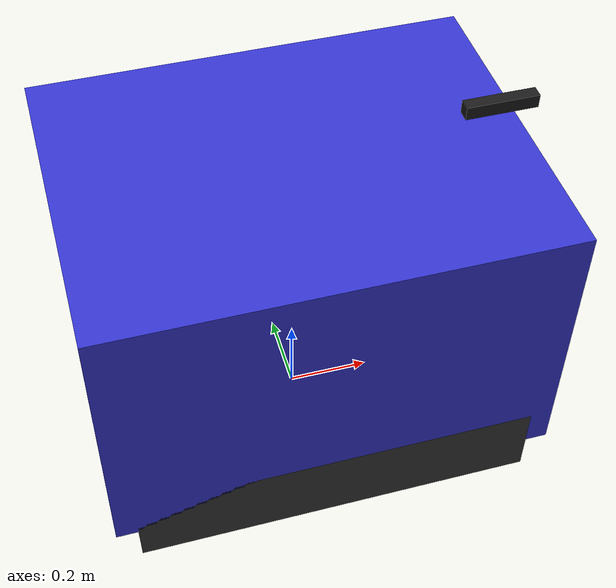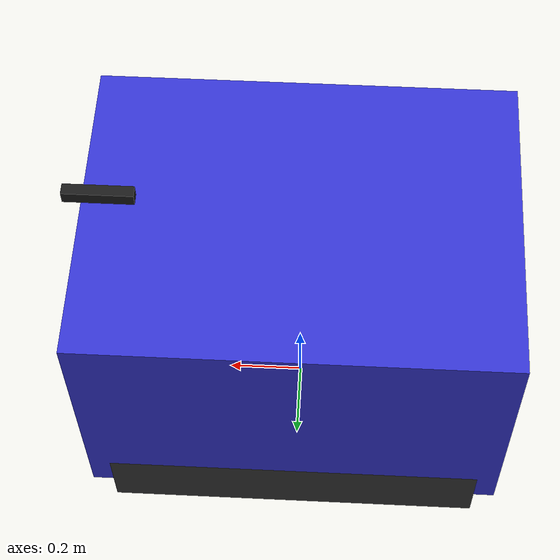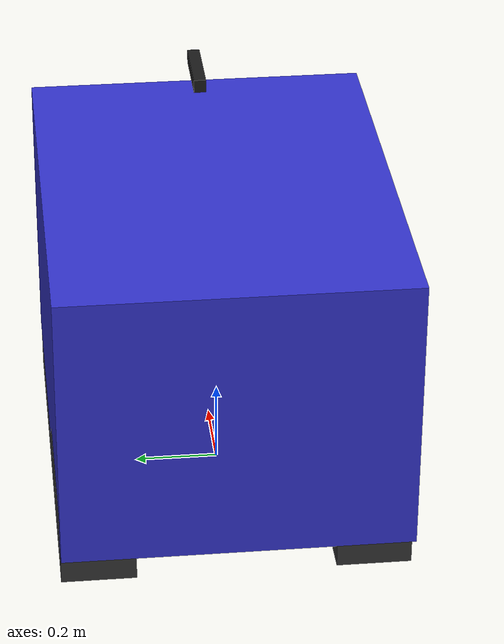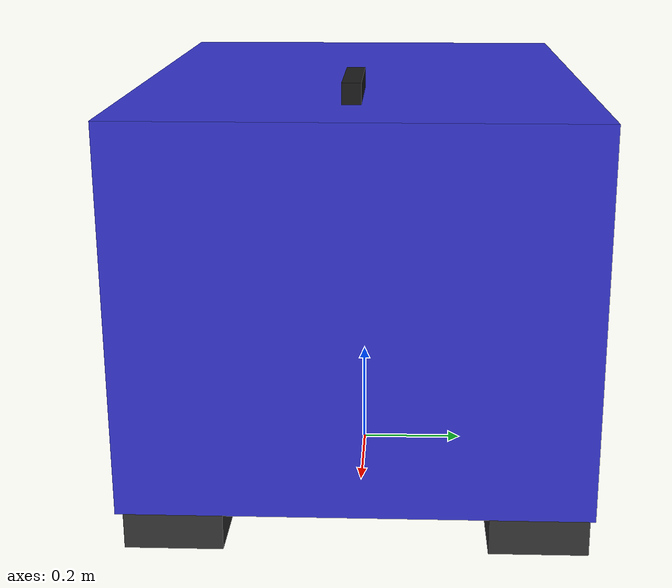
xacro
<?xml version="1.0"?>
<robot name="inspection_robot" xmlns:xacro="http://www.ros.org/wiki/xacro">

  <!-- Import base and camera macros -->
  <xacro:include filename="$(find robot_description)/urdf/robot_base.xacro"/>
  <xacro:include filename="$(find robot_description)/urdf/zed2i.xacro"/>

  <!-- Constants -->
  <xacro:property name="pi" value="3.14159"/>

  <!-- Base link -->
  <link name="base_link">
    <visual>
      <origin xyz="0 0 ${robot_height/2}" rpy="0 0 0"/>
      <geometry>
        <box size="${robot_length} ${robot_width} ${robot_height}"/>
      </geometry>
      <material name="blue">
        <color rgba="0.2 0.2 0.8 1.0"/>
      </material>
    </visual>
    <collision>
      <origin xyz="0 0 ${robot_height/2}" rpy="0 0 0"/>
      <geometry>
        <box size="${robot_length} ${robot_width} ${robot_height}"/>
      </geometry>
    </collision>
    <xacro:box_inertia m="${chassis_mass}" x="${robot_length}" y="${robot_width}" z="${robot_height}"/>
  </link>

  <!-- Add left and right tracks -->
  <xacro:track prefix="left" reflect_y="1"/>
  <xacro:track prefix="right" reflect_y="-1"/>

  <!-- Add ZED2i camera -->
  <xacro:zed2i_camera name="zed2i" parent="base_link">
    <origin xyz="${robot_length/2 - 0.05} 0 ${robot_height + 0.05}" rpy="0 0 0"/>
  </xacro:zed2i_camera>

  <!-- Robot footprint for navigation -->
  <link name="base_footprint"/>
  <joint name="base_footprint_joint" type="fixed">
    <parent link="base_footprint"/>
    <child link="base_link"/>
    <origin xyz="0 0 ${track_wheel_radius}" rpy="0 0 0"/>
  </joint>

  <!-- IMU link -->
  <link name="imu_link">
    <visual>
      <origin xyz="0 0 0" rpy="0 0 0"/>
      <geometry>
        <box size="0.02 0.02 0.01"/>
      </geometry>
      <material name="red">
        <color rgba="0.8 0.1 0.1 1.0"/>
      </material>
    </visual>
    <collision>
      <origin xyz="0 0 0" rpy="0 0 0"/>
      <geometry>
        <box size="0.02 0.02 0.01"/>
      </geometry>
    </collision>
    <inertial>
      <mass value="0.01"/>
      <inertia ixx="0.00001" ixy="0" ixz="0" iyy="0.00001" iyz="0" izz="0.00001"/>
    </inertial>
  </link>

  <joint name="imu_joint" type="fixed">
    <parent link="base_link"/>
    <child link="imu_link"/>
    <origin xyz="0 0 ${robot_height*0.8}" rpy="0 0 0"/>
  </joint>

  <!-- Gazebo plugins and configurations would go here for simulation -->

</robot>

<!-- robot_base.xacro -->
<robot xmlns:xacro="http://www.ros.org/wiki/xacro">

  <!-- Robot Properties -->
  <xacro:property name="robot_length" value="1.070"/>
  <xacro:property name="robot_width" value="0.820"/>
  <xacro:property name="robot_height" value="0.680"/>
  <xacro:property name="track_wheel_radius" value="0.095"/>
  <xacro:property name="track_width" value="0.176"/>
  <xacro:property name="chassis_mass" value="50.0"/>

  <!-- Inertia macro -->
  <xacro:macro name="box_inertia" params="m x y z">
    <inertial>
      <mass value="${m}"/>
      <inertia ixx="${m*(y*y+z*z)/12}" ixy="0" ixz="0"
               iyy="${m*(x*x+z*z)/12}" iyz="0"
               izz="${m*(x*x+y*y)/12}"/>
    </inertial>
  </xacro:macro>

  <!-- Track macro -->
  <xacro:macro name="track" params="prefix reflect_y">
    <link name="${prefix}_track">
      <visual>
        <origin xyz="0 0 0" rpy="0 0 0"/>
        <geometry>
          <box size="${robot_length*0.9} ${track_width} ${track_wheel_radius*2}"/>
        </geometry>
        <material name="dark_grey">
          <color rgba="0.2 0.2 0.2 1"/>
        </material>
      </visual>
      <collision>
        <origin xyz="0 0 0" rpy="0 0 0"/>
        <geometry>
          <box size="${robot_length*0.9} ${track_width} ${track_wheel_radius*2}"/>
        </geometry>
      </collision>
      <xacro:box_inertia m="20" x="${robot_length*0.9}" y="${track_width}" z="${track_wheel_radius*2}"/>
    </link>

    <joint name="${prefix}_track_joint" type="fixed">
      <parent link="base_link"/>
      <child link="${prefix}_track"/>
      <origin xyz="0 ${reflect_y*(robot_width/2 - track_width/2)} 0" rpy="0 0 0"/>
    </joint>
  </xacro:macro>

</robot>

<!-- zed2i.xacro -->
<robot xmlns:xacro="http://www.ros.org/wiki/xacro">

  <!-- ZED2i camera macro -->
  <xacro:macro name="zed2i_camera" params="name parent *origin">
    <link name="${name}_camera_link">
      <visual>
        <origin xyz="0 0 0" rpy="0 0 0"/>
        <geometry>
          <box size="0.175 0.030 0.033"/>
        </geometry>
        <material name="dark_gray">
          <color rgba="0.1 0.1 0.1 1"/>
        </material>
      </visual>
      <collision>
        <origin xyz="0 0 0" rpy="0 0 0"/>
        <geometry>
          <box size="0.175 0.030 0.033"/>
        </geometry>
      </collision>
      <inertial>
        <mass value="0.159"/>
        <inertia ixx="0.0001" ixy="0" ixz="0" iyy="0.0001" iyz="0" izz="0.0001"/>
      </inertial>
    </link>

    <joint name="${name}_camera_joint" type="fixed">
      <parent link="${parent}"/>
      <child link="${name}_camera_link"/>
      <xacro:insert_block name="origin"/>
    </joint>

    <!-- Optical frame for the camera (for ROS conventions) -->
    <link name="${name}_camera_optical_frame"/>
    <joint name="${name}_camera_optical_joint" type="fixed">
      <parent link="${name}_camera_link"/>
      <child link="${name}_camera_optical_frame"/>
      <!-- ZED2i is a stereo camera with a baseline of 120mm -->
      <!-- The optical frame is at the left camera optical center -->
      <origin xyz="0 0 0" rpy="-${pi/2} 0 -${pi/2}"/>
    </joint>

    <!-- Left camera frame -->
    <link name="${name}_left_camera_frame"/>
    <joint name="${name}_left_camera_joint" type="fixed">
      <parent link="${name}_camera_link"/>
      <child link="${name}_left_camera_frame"/>
      <origin xyz="0 0.06 0" rpy="0 0 0"/>
    </joint>

    <!-- Left camera optical frame -->
    <link name="${name}_left_camera_optical_frame"/>
    <joint name="${name}_left_camera_optical_joint" type="fixed">
      <parent link="${name}_left_camera_frame"/>
      <child link="${name}_left_camera_optical_frame"/>
      <origin xyz="0 0 0" rpy="-${pi/2} 0 -${pi/2}"/>
    </joint>

    <!-- Right camera frame -->
    <link name="${name}_right_camera_frame"/>
    <joint name="${name}_right_camera_joint" type="fixed">
      <parent link="${name}_camera_link"/>
      <child link="${name}_right_camera_frame"/>
      <origin xyz="0 -0.06 0" rpy="0 0 0"/>
    </joint>

    <!-- Right camera optical frame -->
    <link name="${name}_right_camera_optical_frame"/>
    <joint name="${name}_right_camera_optical_joint" type="fixed">
      <parent link="${name}_right_camera_frame"/>
      <child link="${name}_right_camera_optical_frame"/>
      <origin xyz="0 0 0" rpy="-${pi/2} 0 -${pi/2}"/>
    </joint>
  </xacro:macro>

</robot>
